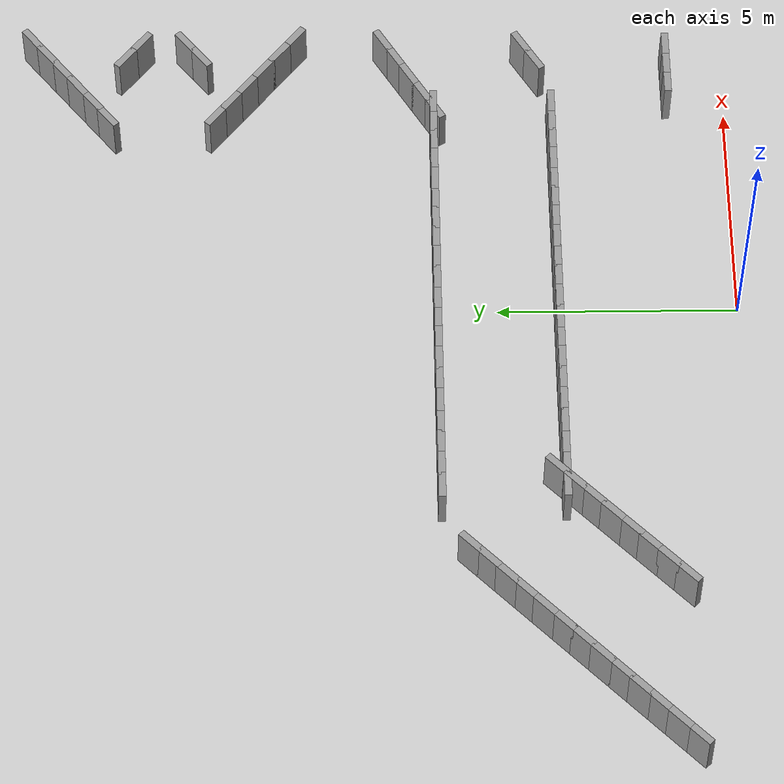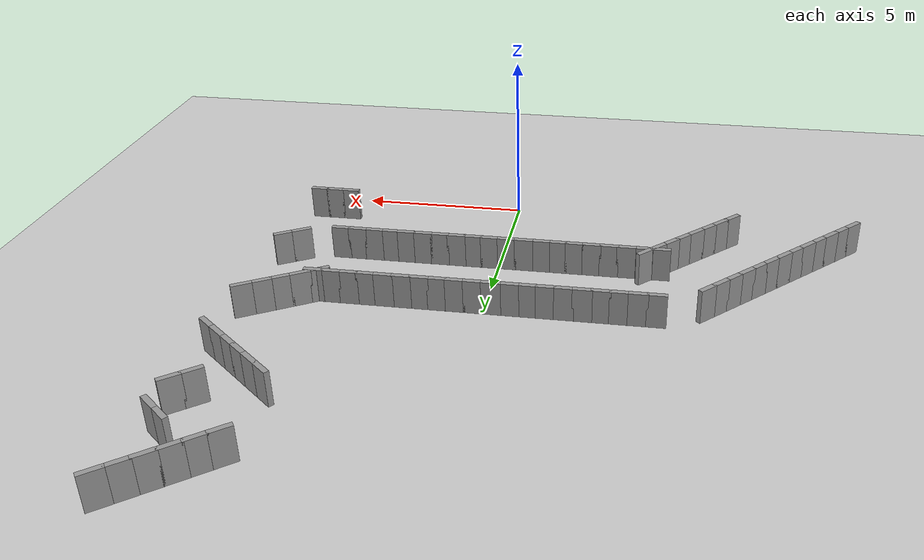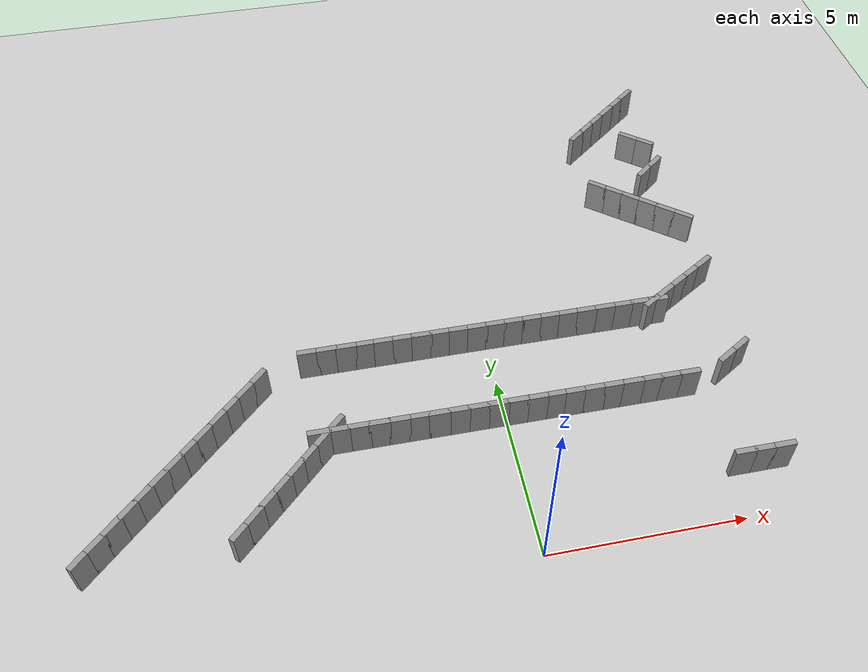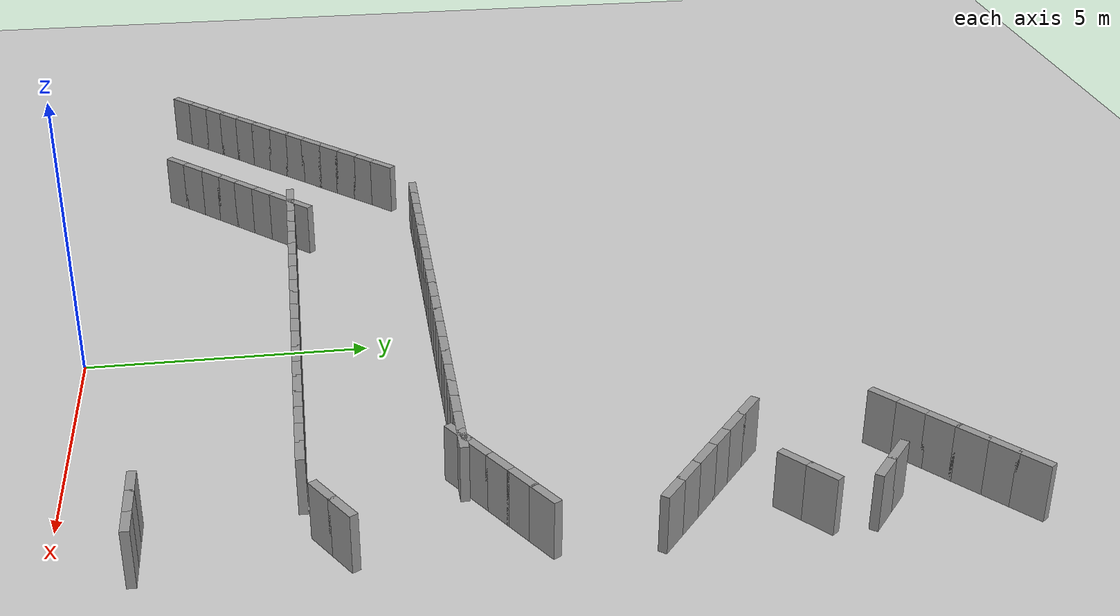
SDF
<sdf version="1.6">
 <world name="robot_harmonic_track">
  <include><uri>model://sun</uri></include>
  <include><uri>model://ground_plane</uri></include>
  <model name="wall_inner_10">
   <pose>5.25 1.25 0.5 0 0 0.0</pose>
   <static>1</static>
   <link name="link">
    <collision name="collision"><geometry><box><size>0.55 0.15 1.0</size></box></geometry></collision>
    <visual name="visual">
     <geometry><box><size>0.55 0.15 1.0</size></box></geometry>
     <material>
      <script><uri>file://media/materials/scripts/gazebo.material</uri><name>Gazebo/Grey</name></script>
     </material>
    </visual>
   </link>
  </model>
  <model name="wall_inner_11">
   <pose>5.75 1.25 0.5 0 0 0.0</pose>
   <static>1</static>
   <link name="link">
    <collision name="collision"><geometry><box><size>0.55 0.15 1.0</size></box></geometry></collision>
    <visual name="visual">
     <geometry><box><size>0.55 0.15 1.0</size></box></geometry>
     <material>
      <script><uri>file://media/materials/scripts/gazebo.material</uri><name>Gazebo/Grey</name></script>
     </material>
    </visual>
   </link>
  </model>
  <model name="wall_inner_12">
   <pose>6.25 1.25 0.5 0 0 0.0</pose>
   <static>1</static>
   <link name="link">
    <collision name="collision"><geometry><box><size>0.55 0.15 1.0</size></box></geometry></collision>
    <visual name="visual">
     <geometry><box><size>0.55 0.15 1.0</size></box></geometry>
     <material>
      <script><uri>file://media/materials/scripts/gazebo.material</uri><name>Gazebo/Grey</name></script>
     </material>
    </visual>
   </link>
  </model>
  <model name="wall_outer_122">
   <pose>6.510797857223635 14.809419345137119 0.5 0 0 -2.4668517113662403</pose>
   <static>1</static>
   <link name="link">
    <collision name="collision">
     <geometry><box><size>0.583593686452738 0.15 1.0</size></box></geometry>
    </collision>
    <visual name="visual">
     <geometry><box><size>0.583593686452738 0.15 1.0</size></box></geometry>
     <material>
      <script><uri>file://media/materials/scripts/gazebo.material</uri><name>Gazebo/Grey</name></script>
     </material>
    </visual>
   </link>
  </model>
  <model name="wall_outer_123">
   <pose>6.09413119055697 14.476086011803789 0.5 0 0 -2.4668517113662416</pose>
   <static>1</static>
   <link name="link">
    <collision name="collision">
     <geometry><box><size>0.5835936864527362 0.15 1.0</size></box></geometry>
    </collision>
    <visual name="visual">
     <geometry><box><size>0.5835936864527362 0.15 1.0</size></box></geometry>
     <material>
      <script><uri>file://media/materials/scripts/gazebo.material</uri><name>Gazebo/Grey</name></script>
     </material>
    </visual>
   </link>
  </model>
  <model name="wall_outer_124">
   <pose>5.677464523890303 14.142752678470455 0.5 0 0 -2.4668517113662403</pose>
   <static>1</static>
   <link name="link">
    <collision name="collision">
     <geometry><box><size>0.583593686452738 0.15 1.0</size></box></geometry>
    </collision>
    <visual name="visual">
     <geometry><box><size>0.583593686452738 0.15 1.0</size></box></geometry>
     <material>
      <script><uri>file://media/materials/scripts/gazebo.material</uri><name>Gazebo/Grey</name></script>
     </material>
    </visual>
   </link>
  </model>
  <model name="wall_outer_125">
   <pose>5.260797857223635 13.809419345137119 0.5 0 0 -2.4668517113662403</pose>
   <static>1</static>
   <link name="link">
    <collision name="collision">
     <geometry><box><size>0.583593686452738 0.15 1.0</size></box></geometry>
    </collision>
    <visual name="visual">
     <geometry><box><size>0.583593686452738 0.15 1.0</size></box></geometry>
     <material>
      <script><uri>file://media/materials/scripts/gazebo.material</uri><name>Gazebo/Grey</name></script>
     </material>
    </visual>
   </link>
  </model>
  <model name="wall_inner_126">
   <pose>6.40586880944303 11.523913988196211 0.5 0 0 -2.4668517113662416</pose>
   <static>1</static>
   <link name="link">
    <collision name="collision">
     <geometry><box><size>0.5835936864527362 0.15 1.0</size></box></geometry>
    </collision>
    <visual name="visual">
     <geometry><box><size>0.5835936864527362 0.15 1.0</size></box></geometry>
     <material>
      <script><uri>file://media/materials/scripts/gazebo.material</uri><name>Gazebo/Grey</name></script>
     </material>
    </visual>
   </link>
  </model>
  <model name="wall_outer_126">
   <pose>4.84413119055697 13.476086011803789 0.5 0 0 -2.4668517113662416</pose>
   <static>1</static>
   <link name="link">
    <collision name="collision">
     <geometry><box><size>0.5835936864527362 0.15 1.0</size></box></geometry>
    </collision>
    <visual name="visual">
     <geometry><box><size>0.5835936864527362 0.15 1.0</size></box></geometry>
     <material>
      <script><uri>file://media/materials/scripts/gazebo.material</uri><name>Gazebo/Grey</name></script>
     </material>
    </visual>
   </link>
  </model>
  <model name="wall_inner_127">
   <pose>5.989202142776365 11.190580654862881 0.5 0 0 -2.4668517113662403</pose>
   <static>1</static>
   <link name="link">
    <collision name="collision">
     <geometry><box><size>0.583593686452738 0.15 1.0</size></box></geometry>
    </collision>
    <visual name="visual">
     <geometry><box><size>0.583593686452738 0.15 1.0</size></box></geometry>
     <material>
      <script><uri>file://media/materials/scripts/gazebo.material</uri><name>Gazebo/Grey</name></script>
     </material>
    </visual>
   </link>
  </model>
  <model name="wall_outer_127">
   <pose>4.427464523890303 13.142752678470455 0.5 0 0 -2.4668517113662403</pose>
   <static>1</static>
   <link name="link">
    <collision name="collision">
     <geometry><box><size>0.583593686452738 0.15 1.0</size></box></geometry>
    </collision>
    <visual name="visual">
     <geometry><box><size>0.583593686452738 0.15 1.0</size></box></geometry>
     <material>
      <script><uri>file://media/materials/scripts/gazebo.material</uri><name>Gazebo/Grey</name></script>
     </material>
    </visual>
   </link>
  </model>
  <model name="wall_inner_128">
   <pose>5.989202142776365 12.809419345137119 0.5 0 0 -0.6747409422235532</pose>
   <static>1</static>
   <link name="link">
    <collision name="collision">
     <geometry><box><size>0.583593686452738 0.15 1.0</size></box></geometry>
    </collision>
    <visual name="visual">
     <geometry><box><size>0.583593686452738 0.15 1.0</size></box></geometry>
     <material>
      <script><uri>file://media/materials/scripts/gazebo.material</uri><name>Gazebo/Grey</name></script>
     </material>
    </visual>
   </link>
  </model>
  <model name="wall_outer_128">
   <pose>4.427464523890303 10.857247321529545 0.5 0 0 -0.6747409422235532</pose>
   <static>1</static>
   <link name="link">
    <collision name="collision">
     <geometry><box><size>0.583593686452738 0.15 1.0</size></box></geometry>
    </collision>
    <visual name="visual">
     <geometry><box><size>0.583593686452738 0.15 1.0</size></box></geometry>
     <material>
      <script><uri>file://media/materials/scripts/gazebo.material</uri><name>Gazebo/Grey</name></script>
     </material>
    </visual>
   </link>
  </model>
  <model name="wall_inner_129">
   <pose>6.40586880944303 12.476086011803789 0.5 0 0 -0.6747409422235516</pose>
   <static>1</static>
   <link name="link">
    <collision name="collision">
     <geometry><box><size>0.5835936864527362 0.15 1.0</size></box></geometry>
    </collision>
    <visual name="visual">
     <geometry><box><size>0.5835936864527362 0.15 1.0</size></box></geometry>
     <material>
      <script><uri>file://media/materials/scripts/gazebo.material</uri><name>Gazebo/Grey</name></script>
     </material>
    </visual>
   </link>
  </model>
  <model name="wall_outer_129">
   <pose>4.84413119055697 10.523913988196211 0.5 0 0 -0.6747409422235516</pose>
   <static>1</static>
   <link name="link">
    <collision name="collision">
     <geometry><box><size>0.5835936864527362 0.15 1.0</size></box></geometry>
    </collision>
    <visual name="visual">
     <geometry><box><size>0.5835936864527362 0.15 1.0</size></box></geometry>
     <material>
      <script><uri>file://media/materials/scripts/gazebo.material</uri><name>Gazebo/Grey</name></script>
     </material>
    </visual>
   </link>
  </model>
  <model name="wall_outer_130">
   <pose>5.260797857223635 10.190580654862881 0.5 0 0 -0.6747409422235532</pose>
   <static>1</static>
   <link name="link">
    <collision name="collision">
     <geometry><box><size>0.583593686452738 0.15 1.0</size></box></geometry>
    </collision>
    <visual name="visual">
     <geometry><box><size>0.583593686452738 0.15 1.0</size></box></geometry>
     <material>
      <script><uri>file://media/materials/scripts/gazebo.material</uri><name>Gazebo/Grey</name></script>
     </material>
    </visual>
   </link>
  </model>
  <model name="wall_outer_131">
   <pose>5.677464523890301 9.857247321529545 0.5 0 0 -0.6747409422235542</pose>
   <static>1</static>
   <link name="link">
    <collision name="collision">
     <geometry><box><size>0.5835936864527373 0.15 1.0</size></box></geometry>
    </collision>
    <visual name="visual">
     <geometry><box><size>0.5835936864527373 0.15 1.0</size></box></geometry>
     <material>
      <script><uri>file://media/materials/scripts/gazebo.material</uri><name>Gazebo/Grey</name></script>
     </material>
    </visual>
   </link>
  </model>
  <model name="wall_outer_132">
   <pose>6.094131190556973 9.52391398819621 0.5 0 0 -0.6747409422235495</pose>
   <static>1</static>
   <link name="link">
    <collision name="collision">
     <geometry><box><size>0.5835936864527377 0.15 1.0</size></box></geometry>
    </collision>
    <visual name="visual">
     <geometry><box><size>0.5835936864527377 0.15 1.0</size></box></geometry>
     <material>
      <script><uri>file://media/materials/scripts/gazebo.material</uri><name>Gazebo/Grey</name></script>
     </material>
    </visual>
   </link>
  </model>
  <model name="wall_outer_133">
   <pose>6.510797857223635 9.190580654862881 0.5 0 0 -0.6747409422235542</pose>
   <static>1</static>
   <link name="link">
    <collision name="collision">
     <geometry><box><size>0.5835936864527373 0.15 1.0</size></box></geometry>
    </collision>
    <visual name="visual">
     <geometry><box><size>0.5835936864527373 0.15 1.0</size></box></geometry>
     <material>
      <script><uri>file://media/materials/scripts/gazebo.material</uri><name>Gazebo/Grey</name></script>
     </material>
    </visual>
   </link>
  </model>
  <model name="wall_outer_146">
   <pose>6.402334851170139 7.2991388844134075 0.5 0 0 -2.60117315331921</pose>
   <static>1</static>
   <link name="link">
    <collision name="collision">
     <geometry><box><size>0.5800865358950277 0.15 1.0</size></box></geometry>
    </collision>
    <visual name="visual">
     <geometry><box><size>0.5800865358950277 0.15 1.0</size></box></geometry>
     <material>
      <script><uri>file://media/materials/scripts/gazebo.material</uri><name>Gazebo/Grey</name></script>
     </material>
    </visual>
   </link>
  </model>
  <model name="wall_outer_147">
   <pose>5.9477893966246835 7.026411611686136 0.5 0 0 -2.60117315331921</pose>
   <static>1</static>
   <link name="link">
    <collision name="collision">
     <geometry><box><size>0.5800865358950277 0.15 1.0</size></box></geometry>
    </collision>
    <visual name="visual">
     <geometry><box><size>0.5800865358950277 0.15 1.0</size></box></geometry>
     <material>
      <script><uri>file://media/materials/scripts/gazebo.material</uri><name>Gazebo/Grey</name></script>
     </material>
    </visual>
   </link>
  </model>
  <model name="wall_outer_148">
   <pose>5.493243942079227 6.753684338958861 0.5 0 0 -2.6011731533192077</pose>
   <static>1</static>
   <link name="link">
    <collision name="collision">
     <geometry><box><size>0.5800865358950273 0.15 1.0</size></box></geometry>
    </collision>
    <visual name="visual">
     <geometry><box><size>0.5800865358950273 0.15 1.0</size></box></geometry>
     <material>
      <script><uri>file://media/materials/scripts/gazebo.material</uri><name>Gazebo/Grey</name></script>
     </material>
    </visual>
   </link>
  </model>
  <model name="wall_inner_149">
   <pose>6.324937876102588 4.337224751950228 0.5 0 0 -2.6011731533192104</pose>
   <static>1</static>
   <link name="link">
    <collision name="collision">
     <geometry><box><size>0.5800865358950265 0.15 1.0</size></box></geometry>
    </collision>
    <visual name="visual">
     <geometry><box><size>0.5800865358950265 0.15 1.0</size></box></geometry>
     <material>
      <script><uri>file://media/materials/scripts/gazebo.material</uri><name>Gazebo/Grey</name></script>
     </material>
    </visual>
   </link>
  </model>
  <model name="wall_outer_149">
   <pose>5.038698487533775 6.48095706623159 0.5 0 0 -2.6011731533192104</pose>
   <static>1</static>
   <link name="link">
    <collision name="collision">
     <geometry><box><size>0.5800865358950265 0.15 1.0</size></box></geometry>
    </collision>
    <visual name="visual">
     <geometry><box><size>0.5800865358950265 0.15 1.0</size></box></geometry>
     <material>
      <script><uri>file://media/materials/scripts/gazebo.material</uri><name>Gazebo/Grey</name></script>
     </material>
    </visual>
   </link>
  </model>
  <model name="wall_inner_150">
   <pose>5.870392421557137 4.064497479222957 0.5 0 0 -2.6011731533192086</pose>
   <static>1</static>
   <link name="link">
    <collision name="collision">
     <geometry><box><size>0.5800865358950281 0.15 1.0</size></box></geometry>
    </collision>
    <visual name="visual">
     <geometry><box><size>0.5800865358950281 0.15 1.0</size></box></geometry>
     <material>
      <script><uri>file://media/materials/scripts/gazebo.material</uri><name>Gazebo/Grey</name></script>
     </material>
    </visual>
   </link>
  </model>
  <model name="wall_outer_150">
   <pose>4.584153032988318 6.208229793504317 0.5 0 0 -2.6011731533192086</pose>
   <static>1</static>
   <link name="link">
    <collision name="collision">
     <geometry><box><size>0.5800865358950281 0.15 1.0</size></box></geometry>
    </collision>
    <visual name="visual">
     <geometry><box><size>0.5800865358950281 0.15 1.0</size></box></geometry>
     <material>
      <script><uri>file://media/materials/scripts/gazebo.material</uri><name>Gazebo/Grey</name></script>
     </material>
    </visual>
   </link>
  </model>
  <model name="wall_inner_151">
   <pose>4.75 3.75 0.5 0 0 3.141592653589793</pose>
   <static>1</static>
   <link name="link">
    <collision name="collision"><geometry><box><size>0.55 0.15 1.0</size></box></geometry></collision>
    <visual name="visual">
     <geometry><box><size>0.55 0.15 1.0</size></box></geometry>
     <material>
      <script><uri>file://media/materials/scripts/gazebo.material</uri><name>Gazebo/Grey</name></script>
     </material>
    </visual>
   </link>
  </model>
  <model name="wall_outer_151">
   <pose>4.75 6.25 0.5 0 0 3.141592653589793</pose>
   <static>1</static>
   <link name="link">
    <collision name="collision"><geometry><box><size>0.55 0.15 1.0</size></box></geometry></collision>
    <visual name="visual">
     <geometry><box><size>0.55 0.15 1.0</size></box></geometry>
     <material>
      <script><uri>file://media/materials/scripts/gazebo.material</uri><name>Gazebo/Grey</name></script>
     </material>
    </visual>
   </link>
  </model>
  <model name="wall_inner_152">
   <pose>4.25 3.75 0.5 0 0 3.141592653589793</pose>
   <static>1</static>
   <link name="link">
    <collision name="collision"><geometry><box><size>0.55 0.15 1.0</size></box></geometry></collision>
    <visual name="visual">
     <geometry><box><size>0.55 0.15 1.0</size></box></geometry>
     <material>
      <script><uri>file://media/materials/scripts/gazebo.material</uri><name>Gazebo/Grey</name></script>
     </material>
    </visual>
   </link>
  </model>
  <model name="wall_outer_152">
   <pose>4.25 6.25 0.5 0 0 3.141592653589793</pose>
   <static>1</static>
   <link name="link">
    <collision name="collision"><geometry><box><size>0.55 0.15 1.0</size></box></geometry></collision>
    <visual name="visual">
     <geometry><box><size>0.55 0.15 1.0</size></box></geometry>
     <material>
      <script><uri>file://media/materials/scripts/gazebo.material</uri><name>Gazebo/Grey</name></script>
     </material>
    </visual>
   </link>
  </model>
  <model name="wall_inner_153">
   <pose>3.75 3.75 0.5 0 0 3.141592653589793</pose>
   <static>1</static>
   <link name="link">
    <collision name="collision"><geometry><box><size>0.55 0.15 1.0</size></box></geometry></collision>
    <visual name="visual">
     <geometry><box><size>0.55 0.15 1.0</size></box></geometry>
     <material>
      <script><uri>file://media/materials/scripts/gazebo.material</uri><name>Gazebo/Grey</name></script>
     </material>
    </visual>
   </link>
  </model>
  <model name="wall_outer_153">
   <pose>3.75 6.25 0.5 0 0 3.141592653589793</pose>
   <static>1</static>
   <link name="link">
    <collision name="collision"><geometry><box><size>0.55 0.15 1.0</size></box></geometry></collision>
    <visual name="visual">
     <geometry><box><size>0.55 0.15 1.0</size></box></geometry>
     <material>
      <script><uri>file://media/materials/scripts/gazebo.material</uri><name>Gazebo/Grey</name></script>
     </material>
    </visual>
   </link>
  </model>
  <model name="wall_inner_154">
   <pose>3.25 3.75 0.5 0 0 3.141592653589793</pose>
   <static>1</static>
   <link name="link">
    <collision name="collision"><geometry><box><size>0.55 0.15 1.0</size></box></geometry></collision>
    <visual name="visual">
     <geometry><box><size>0.55 0.15 1.0</size></box></geometry>
     <material>
      <script><uri>file://media/materials/scripts/gazebo.material</uri><name>Gazebo/Grey</name></script>
     </material>
    </visual>
   </link>
  </model>
  <model name="wall_outer_154">
   <pose>3.25 6.25 0.5 0 0 3.141592653589793</pose>
   <static>1</static>
   <link name="link">
    <collision name="collision"><geometry><box><size>0.55 0.15 1.0</size></box></geometry></collision>
    <visual name="visual">
     <geometry><box><size>0.55 0.15 1.0</size></box></geometry>
     <material>
      <script><uri>file://media/materials/scripts/gazebo.material</uri><name>Gazebo/Grey</name></script>
     </material>
    </visual>
   </link>
  </model>
  <model name="wall_inner_155">
   <pose>2.75 3.75 0.5 0 0 3.141592653589793</pose>
   <static>1</static>
   <link name="link">
    <collision name="collision"><geometry><box><size>0.55 0.15 1.0</size></box></geometry></collision>
    <visual name="visual">
     <geometry><box><size>0.55 0.15 1.0</size></box></geometry>
     <material>
      <script><uri>file://media/materials/scripts/gazebo.material</uri><name>Gazebo/Grey</name></script>
     </material>
    </visual>
   </link>
  </model>
  <model name="wall_outer_155">
   <pose>2.75 6.25 0.5 0 0 3.141592653589793</pose>
   <static>1</static>
   <link name="link">
    <collision name="collision"><geometry><box><size>0.55 0.15 1.0</size></box></geometry></collision>
    <visual name="visual">
     <geometry><box><size>0.55 0.15 1.0</size></box></geometry>
     <material>
      <script><uri>file://media/materials/scripts/gazebo.material</uri><name>Gazebo/Grey</name></script>
     </material>
    </visual>
   </link>
  </model>
  <model name="wall_inner_156">
   <pose>2.25 3.75 0.5 0 0 3.141592653589793</pose>
   <static>1</static>
   <link name="link">
    <collision name="collision"><geometry><box><size>0.55 0.15 1.0</size></box></geometry></collision>
    <visual name="visual">
     <geometry><box><size>0.55 0.15 1.0</size></box></geometry>
     <material>
      <script><uri>file://media/materials/scripts/gazebo.material</uri><name>Gazebo/Grey</name></script>
     </material>
    </visual>
   </link>
  </model>
  <model name="wall_outer_156">
   <pose>2.25 6.25 0.5 0 0 3.141592653589793</pose>
   <static>1</static>
   <link name="link">
    <collision name="collision"><geometry><box><size>0.55 0.15 1.0</size></box></geometry></collision>
    <visual name="visual">
     <geometry><box><size>0.55 0.15 1.0</size></box></geometry>
     <material>
      <script><uri>file://media/materials/scripts/gazebo.material</uri><name>Gazebo/Grey</name></script>
     </material>
    </visual>
   </link>
  </model>
  <model name="wall_inner_157">
   <pose>1.7499999999999998 3.75 0.5 0 0 3.141592653589793</pose>
   <static>1</static>
   <link name="link">
    <collision name="collision"><geometry><box><size>0.55 0.15 1.0</size></box></geometry></collision>
    <visual name="visual">
     <geometry><box><size>0.55 0.15 1.0</size></box></geometry>
     <material>
      <script><uri>file://media/materials/scripts/gazebo.material</uri><name>Gazebo/Grey</name></script>
     </material>
    </visual>
   </link>
  </model>
  <model name="wall_outer_157">
   <pose>1.7500000000000002 6.25 0.5 0 0 3.141592653589793</pose>
   <static>1</static>
   <link name="link">
    <collision name="collision"><geometry><box><size>0.55 0.15 1.0</size></box></geometry></collision>
    <visual name="visual">
     <geometry><box><size>0.55 0.15 1.0</size></box></geometry>
     <material>
      <script><uri>file://media/materials/scripts/gazebo.material</uri><name>Gazebo/Grey</name></script>
     </material>
    </visual>
   </link>
  </model>
  <model name="wall_inner_158">
   <pose>1.2499999999999998 3.75 0.5 0 0 3.141592653589793</pose>
   <static>1</static>
   <link name="link">
    <collision name="collision"><geometry><box><size>0.55 0.15 1.0</size></box></geometry></collision>
    <visual name="visual">
     <geometry><box><size>0.55 0.15 1.0</size></box></geometry>
     <material>
      <script><uri>file://media/materials/scripts/gazebo.material</uri><name>Gazebo/Grey</name></script>
     </material>
    </visual>
   </link>
  </model>
  <model name="wall_outer_158">
   <pose>1.2500000000000002 6.25 0.5 0 0 3.141592653589793</pose>
   <static>1</static>
   <link name="link">
    <collision name="collision"><geometry><box><size>0.55 0.15 1.0</size></box></geometry></collision>
    <visual name="visual">
     <geometry><box><size>0.55 0.15 1.0</size></box></geometry>
     <material>
      <script><uri>file://media/materials/scripts/gazebo.material</uri><name>Gazebo/Grey</name></script>
     </material>
    </visual>
   </link>
  </model>
  <model name="wall_inner_159">
   <pose>0.7499999999999999 3.75 0.5 0 0 3.141592653589793</pose>
   <static>1</static>
   <link name="link">
    <collision name="collision"><geometry><box><size>0.55 0.15 1.0</size></box></geometry></collision>
    <visual name="visual">
     <geometry><box><size>0.55 0.15 1.0</size></box></geometry>
     <material>
      <script><uri>file://media/materials/scripts/gazebo.material</uri><name>Gazebo/Grey</name></script>
     </material>
    </visual>
   </link>
  </model>
  <model name="wall_outer_159">
   <pose>0.7500000000000001 6.25 0.5 0 0 3.141592653589793</pose>
   <static>1</static>
   <link name="link">
    <collision name="collision"><geometry><box><size>0.55 0.15 1.0</size></box></geometry></collision>
    <visual name="visual">
     <geometry><box><size>0.55 0.15 1.0</size></box></geometry>
     <material>
      <script><uri>file://media/materials/scripts/gazebo.material</uri><name>Gazebo/Grey</name></script>
     </material>
    </visual>
   </link>
  </model>
  <model name="wall_inner_160">
   <pose>0.24999999999999983 3.75 0.5 0 0 3.141592653589793</pose>
   <static>1</static>
   <link name="link">
    <collision name="collision"><geometry><box><size>0.55 0.15 1.0</size></box></geometry></collision>
    <visual name="visual">
     <geometry><box><size>0.55 0.15 1.0</size></box></geometry>
     <material>
      <script><uri>file://media/materials/scripts/gazebo.material</uri><name>Gazebo/Grey</name></script>
     </material>
    </visual>
   </link>
  </model>
  <model name="wall_outer_160">
   <pose>0.25000000000000017 6.25 0.5 0 0 3.141592653589793</pose>
   <static>1</static>
   <link name="link">
    <collision name="collision"><geometry><box><size>0.55 0.15 1.0</size></box></geometry></collision>
    <visual name="visual">
     <geometry><box><size>0.55 0.15 1.0</size></box></geometry>
     <material>
      <script><uri>file://media/materials/scripts/gazebo.material</uri><name>Gazebo/Grey</name></script>
     </material>
    </visual>
   </link>
  </model>
  <model name="wall_inner_161">
   <pose>-0.25000000000000017 3.75 0.5 0 0 3.141592653589793</pose>
   <static>1</static>
   <link name="link">
    <collision name="collision"><geometry><box><size>0.55 0.15 1.0</size></box></geometry></collision>
    <visual name="visual">
     <geometry><box><size>0.55 0.15 1.0</size></box></geometry>
     <material>
      <script><uri>file://media/materials/scripts/gazebo.material</uri><name>Gazebo/Grey</name></script>
     </material>
    </visual>
   </link>
  </model>
  <model name="wall_outer_161">
   <pose>-0.24999999999999983 6.25 0.5 0 0 3.141592653589793</pose>
   <static>1</static>
   <link name="link">
    <collision name="collision"><geometry><box><size>0.55 0.15 1.0</size></box></geometry></collision>
    <visual name="visual">
     <geometry><box><size>0.55 0.15 1.0</size></box></geometry>
     <material>
      <script><uri>file://media/materials/scripts/gazebo.material</uri><name>Gazebo/Grey</name></script>
     </material>
    </visual>
   </link>
  </model>
  <model name="wall_inner_162">
   <pose>-0.7500000000000001 3.75 0.5 0 0 3.141592653589793</pose>
   <static>1</static>
   <link name="link">
    <collision name="collision"><geometry><box><size>0.55 0.15 1.0</size></box></geometry></collision>
    <visual name="visual">
     <geometry><box><size>0.55 0.15 1.0</size></box></geometry>
     <material>
      <script><uri>file://media/materials/scripts/gazebo.material</uri><name>Gazebo/Grey</name></script>
     </material>
    </visual>
   </link>
  </model>
  <model name="wall_outer_162">
   <pose>-0.7499999999999999 6.25 0.5 0 0 3.141592653589793</pose>
   <static>1</static>
   <link name="link">
    <collision name="collision"><geometry><box><size>0.55 0.15 1.0</size></box></geometry></collision>
    <visual name="visual">
     <geometry><box><size>0.55 0.15 1.0</size></box></geometry>
     <material>
      <script><uri>file://media/materials/scripts/gazebo.material</uri><name>Gazebo/Grey</name></script>
     </material>
    </visual>
   </link>
  </model>
  <model name="wall_inner_163">
   <pose>-1.2500000000000002 3.75 0.5 0 0 3.141592653589793</pose>
   <static>1</static>
   <link name="link">
    <collision name="collision"><geometry><box><size>0.55 0.15 1.0</size></box></geometry></collision>
    <visual name="visual">
     <geometry><box><size>0.55 0.15 1.0</size></box></geometry>
     <material>
      <script><uri>file://media/materials/scripts/gazebo.material</uri><name>Gazebo/Grey</name></script>
     </material>
    </visual>
   </link>
  </model>
  <model name="wall_outer_163">
   <pose>-1.2499999999999998 6.25 0.5 0 0 3.141592653589793</pose>
   <static>1</static>
   <link name="link">
    <collision name="collision"><geometry><box><size>0.55 0.15 1.0</size></box></geometry></collision>
    <visual name="visual">
     <geometry><box><size>0.55 0.15 1.0</size></box></geometry>
     <material>
      <script><uri>file://media/materials/scripts/gazebo.material</uri><name>Gazebo/Grey</name></script>
     </material>
    </visual>
   </link>
  </model>
  <model name="wall_inner_164">
   <pose>-1.7500000000000002 3.75 0.5 0 0 3.141592653589793</pose>
   <static>1</static>
   <link name="link">
    <collision name="collision"><geometry><box><size>0.55 0.15 1.0</size></box></geometry></collision>
    <visual name="visual">
     <geometry><box><size>0.55 0.15 1.0</size></box></geometry>
     <material>
      <script><uri>file://media/materials/scripts/gazebo.material</uri><name>Gazebo/Grey</name></script>
     </material>
    </visual>
   </link>
  </model>
  <model name="wall_outer_164">
   <pose>-1.7499999999999998 6.25 0.5 0 0 3.141592653589793</pose>
   <static>1</static>
   <link name="link">
    <collision name="collision"><geometry><box><size>0.55 0.15 1.0</size></box></geometry></collision>
    <visual name="visual">
     <geometry><box><size>0.55 0.15 1.0</size></box></geometry>
     <material>
      <script><uri>file://media/materials/scripts/gazebo.material</uri><name>Gazebo/Grey</name></script>
     </material>
    </visual>
   </link>
  </model>
  <model name="wall_inner_165">
   <pose>-2.25 3.75 0.5 0 0 3.141592653589793</pose>
   <static>1</static>
   <link name="link">
    <collision name="collision"><geometry><box><size>0.55 0.15 1.0</size></box></geometry></collision>
    <visual name="visual">
     <geometry><box><size>0.55 0.15 1.0</size></box></geometry>
     <material>
      <script><uri>file://media/materials/scripts/gazebo.material</uri><name>Gazebo/Grey</name></script>
     </material>
    </visual>
   </link>
  </model>
  <model name="wall_outer_165">
   <pose>-2.25 6.25 0.5 0 0 3.141592653589793</pose>
   <static>1</static>
   <link name="link">
    <collision name="collision"><geometry><box><size>0.55 0.15 1.0</size></box></geometry></collision>
    <visual name="visual">
     <geometry><box><size>0.55 0.15 1.0</size></box></geometry>
     <material>
      <script><uri>file://media/materials/scripts/gazebo.material</uri><name>Gazebo/Grey</name></script>
     </material>
    </visual>
   </link>
  </model>
  <model name="wall_inner_166">
   <pose>-2.75 3.75 0.5 0 0 3.141592653589793</pose>
   <static>1</static>
   <link name="link">
    <collision name="collision"><geometry><box><size>0.55 0.15 1.0</size></box></geometry></collision>
    <visual name="visual">
     <geometry><box><size>0.55 0.15 1.0</size></box></geometry>
     <material>
      <script><uri>file://media/materials/scripts/gazebo.material</uri><name>Gazebo/Grey</name></script>
     </material>
    </visual>
   </link>
  </model>
  <model name="wall_outer_166">
   <pose>-2.75 6.25 0.5 0 0 3.141592653589793</pose>
   <static>1</static>
   <link name="link">
    <collision name="collision"><geometry><box><size>0.55 0.15 1.0</size></box></geometry></collision>
    <visual name="visual">
     <geometry><box><size>0.55 0.15 1.0</size></box></geometry>
     <material>
      <script><uri>file://media/materials/scripts/gazebo.material</uri><name>Gazebo/Grey</name></script>
     </material>
    </visual>
   </link>
  </model>
  <model name="wall_inner_167">
   <pose>-3.25 3.75 0.5 0 0 3.141592653589793</pose>
   <static>1</static>
   <link name="link">
    <collision name="collision"><geometry><box><size>0.55 0.15 1.0</size></box></geometry></collision>
    <visual name="visual">
     <geometry><box><size>0.55 0.15 1.0</size></box></geometry>
     <material>
      <script><uri>file://media/materials/scripts/gazebo.material</uri><name>Gazebo/Grey</name></script>
     </material>
    </visual>
   </link>
  </model>
  <model name="wall_outer_167">
   <pose>-3.25 6.25 0.5 0 0 3.141592653589793</pose>
   <static>1</static>
   <link name="link">
    <collision name="collision"><geometry><box><size>0.55 0.15 1.0</size></box></geometry></collision>
    <visual name="visual">
     <geometry><box><size>0.55 0.15 1.0</size></box></geometry>
     <material>
      <script><uri>file://media/materials/scripts/gazebo.material</uri><name>Gazebo/Grey</name></script>
     </material>
    </visual>
   </link>
  </model>
  <model name="wall_inner_168">
   <pose>-3.75 3.75 0.5 0 0 3.141592653589793</pose>
   <static>1</static>
   <link name="link">
    <collision name="collision"><geometry><box><size>0.55 0.15 1.0</size></box></geometry></collision>
    <visual name="visual">
     <geometry><box><size>0.55 0.15 1.0</size></box></geometry>
     <material>
      <script><uri>file://media/materials/scripts/gazebo.material</uri><name>Gazebo/Grey</name></script>
     </material>
    </visual>
   </link>
  </model>
  <model name="wall_outer_168">
   <pose>-3.75 6.25 0.5 0 0 3.141592653589793</pose>
   <static>1</static>
   <link name="link">
    <collision name="collision"><geometry><box><size>0.55 0.15 1.0</size></box></geometry></collision>
    <visual name="visual">
     <geometry><box><size>0.55 0.15 1.0</size></box></geometry>
     <material>
      <script><uri>file://media/materials/scripts/gazebo.material</uri><name>Gazebo/Grey</name></script>
     </material>
    </visual>
   </link>
  </model>
  <model name="wall_inner_169">
   <pose>-4.25 3.75 0.5 0 0 3.141592653589793</pose>
   <static>1</static>
   <link name="link">
    <collision name="collision"><geometry><box><size>0.55 0.15 1.0</size></box></geometry></collision>
    <visual name="visual">
     <geometry><box><size>0.55 0.15 1.0</size></box></geometry>
     <material>
      <script><uri>file://media/materials/scripts/gazebo.material</uri><name>Gazebo/Grey</name></script>
     </material>
    </visual>
   </link>
  </model>
  <model name="wall_outer_169">
   <pose>-4.25 6.25 0.5 0 0 3.141592653589793</pose>
   <static>1</static>
   <link name="link">
    <collision name="collision"><geometry><box><size>0.55 0.15 1.0</size></box></geometry></collision>
    <visual name="visual">
     <geometry><box><size>0.55 0.15 1.0</size></box></geometry>
     <material>
      <script><uri>file://media/materials/scripts/gazebo.material</uri><name>Gazebo/Grey</name></script>
     </material>
    </visual>
   </link>
  </model>
  <model name="wall_inner_170">
   <pose>-4.75 3.75 0.5 0 0 3.141592653589793</pose>
   <static>1</static>
   <link name="link">
    <collision name="collision"><geometry><box><size>0.55 0.15 1.0</size></box></geometry></collision>
    <visual name="visual">
     <geometry><box><size>0.55 0.15 1.0</size></box></geometry>
     <material>
      <script><uri>file://media/materials/scripts/gazebo.material</uri><name>Gazebo/Grey</name></script>
     </material>
    </visual>
   </link>
  </model>
  <model name="wall_outer_170">
   <pose>-4.75 6.25 0.5 0 0 3.141592653589793</pose>
   <static>1</static>
   <link name="link">
    <collision name="collision"><geometry><box><size>0.55 0.15 1.0</size></box></geometry></collision>
    <visual name="visual">
     <geometry><box><size>0.55 0.15 1.0</size></box></geometry>
     <material>
      <script><uri>file://media/materials/scripts/gazebo.material</uri><name>Gazebo/Grey</name></script>
     </material>
    </visual>
   </link>
  </model>
  <model name="wall_inner_171">
   <pose>-4.294687952088244 3.9375450949453867 0.5 0 0 -2.356194490192345</pose>
   <static>1</static>
   <link name="link">
    <collision name="collision">
     <geometry><box><size>0.5550762722761049 0.15 1.0</size></box></geometry>
    </collision>
    <visual name="visual">
     <geometry><box><size>0.5550762722761049 0.15 1.0</size></box></geometry>
     <material>
      <script><uri>file://media/materials/scripts/gazebo.material</uri><name>Gazebo/Grey</name></script>
     </material>
    </visual>
   </link>
  </model>
  <model name="wall_outer_171">
   <pose>-6.062454905054613 5.705312047911756 0.5 0 0 -2.356194490192345</pose>
   <static>1</static>
   <link name="link">
    <collision name="collision">
     <geometry><box><size>0.5550762722761049 0.15 1.0</size></box></geometry>
    </collision>
    <visual name="visual">
     <geometry><box><size>0.5550762722761049 0.15 1.0</size></box></geometry>
     <material>
      <script><uri>file://media/materials/scripts/gazebo.material</uri><name>Gazebo/Grey</name></script>
     </material>
    </visual>
   </link>
  </model>
  <model name="wall_inner_172">
   <pose>-4.651830809231101 3.58040223780253 0.5 0 0 -2.356194490192345</pose>
   <static>1</static>
   <link name="link">
    <collision name="collision">
     <geometry><box><size>0.5550762722761061 0.15 1.0</size></box></geometry>
    </collision>
    <visual name="visual">
     <geometry><box><size>0.5550762722761061 0.15 1.0</size></box></geometry>
     <material>
      <script><uri>file://media/materials/scripts/gazebo.material</uri><name>Gazebo/Grey</name></script>
     </material>
    </visual>
   </link>
  </model>
  <model name="wall_outer_172">
   <pose>-6.41959776219747 5.348169190768899 0.5 0 0 -2.356194490192345</pose>
   <static>1</static>
   <link name="link">
    <collision name="collision">
     <geometry><box><size>0.5550762722761061 0.15 1.0</size></box></geometry>
    </collision>
    <visual name="visual">
     <geometry><box><size>0.5550762722761061 0.15 1.0</size></box></geometry>
     <material>
      <script><uri>file://media/materials/scripts/gazebo.material</uri><name>Gazebo/Grey</name></script>
     </material>
    </visual>
   </link>
  </model>
  <model name="wall_inner_173">
   <pose>-5.008973666373958 3.223259380659673 0.5 0 0 -2.356194490192345</pose>
   <static>1</static>
   <link name="link">
    <collision name="collision">
     <geometry><box><size>0.5550762722761049 0.15 1.0</size></box></geometry>
    </collision>
    <visual name="visual">
     <geometry><box><size>0.5550762722761049 0.15 1.0</size></box></geometry>
     <material>
      <script><uri>file://media/materials/scripts/gazebo.material</uri><name>Gazebo/Grey</name></script>
     </material>
    </visual>
   </link>
  </model>
  <model name="wall_outer_173">
   <pose>-6.776740619340327 4.991026333626042 0.5 0 0 -2.356194490192345</pose>
   <static>1</static>
   <link name="link">
    <collision name="collision">
     <geometry><box><size>0.5550762722761049 0.15 1.0</size></box></geometry>
    </collision>
    <visual name="visual">
     <geometry><box><size>0.5550762722761049 0.15 1.0</size></box></geometry>
     <material>
      <script><uri>file://media/materials/scripts/gazebo.material</uri><name>Gazebo/Grey</name></script>
     </material>
    </visual>
   </link>
  </model>
  <model name="wall_inner_174">
   <pose>-5.3661165235168165 2.8661165235168147 0.5 0 0 -2.3561944901923457</pose>
   <static>1</static>
   <link name="link">
    <collision name="collision">
     <geometry><box><size>0.5550762722761058 0.15 1.0</size></box></geometry>
    </collision>
    <visual name="visual">
     <geometry><box><size>0.5550762722761058 0.15 1.0</size></box></geometry>
     <material>
      <script><uri>file://media/materials/scripts/gazebo.material</uri><name>Gazebo/Grey</name></script>
     </material>
    </visual>
   </link>
  </model>
  <model name="wall_outer_174">
   <pose>-7.1338834764831835 4.633883476483185 0.5 0 0 -2.3561944901923457</pose>
   <static>1</static>
   <link name="link">
    <collision name="collision">
     <geometry><box><size>0.5550762722761058 0.15 1.0</size></box></geometry>
    </collision>
    <visual name="visual">
     <geometry><box><size>0.5550762722761058 0.15 1.0</size></box></geometry>
     <material>
      <script><uri>file://media/materials/scripts/gazebo.material</uri><name>Gazebo/Grey</name></script>
     </material>
    </visual>
   </link>
  </model>
  <model name="wall_inner_175">
   <pose>-5.723259380659673 2.5089736663739592 0.5 0 0 -2.3561944901923444</pose>
   <static>1</static>
   <link name="link">
    <collision name="collision">
     <geometry><box><size>0.5550762722761052 0.15 1.0</size></box></geometry>
    </collision>
    <visual name="visual">
     <geometry><box><size>0.5550762722761052 0.15 1.0</size></box></geometry>
     <material>
      <script><uri>file://media/materials/scripts/gazebo.material</uri><name>Gazebo/Grey</name></script>
     </material>
    </visual>
   </link>
  </model>
  <model name="wall_outer_175">
   <pose>-7.491026333626042 4.276740619340327 0.5 0 0 -2.3561944901923444</pose>
   <static>1</static>
   <link name="link">
    <collision name="collision">
     <geometry><box><size>0.5550762722761052 0.15 1.0</size></box></geometry>
    </collision>
    <visual name="visual">
     <geometry><box><size>0.5550762722761052 0.15 1.0</size></box></geometry>
     <material>
      <script><uri>file://media/materials/scripts/gazebo.material</uri><name>Gazebo/Grey</name></script>
     </material>
    </visual>
   </link>
  </model>
  <model name="wall_inner_176">
   <pose>-6.080402237802529 2.1518308092311016 0.5 0 0 -2.3561944901923444</pose>
   <static>1</static>
   <link name="link">
    <collision name="collision">
     <geometry><box><size>0.5550762722761052 0.15 1.0</size></box></geometry>
    </collision>
    <visual name="visual">
     <geometry><box><size>0.5550762722761052 0.15 1.0</size></box></geometry>
     <material>
      <script><uri>file://media/materials/scripts/gazebo.material</uri><name>Gazebo/Grey</name></script>
     </material>
    </visual>
   </link>
  </model>
  <model name="wall_outer_176">
   <pose>-7.848169190768898 3.9195977621974696 0.5 0 0 -2.3561944901923444</pose>
   <static>1</static>
   <link name="link">
    <collision name="collision">
     <geometry><box><size>0.5550762722761052 0.15 1.0</size></box></geometry>
    </collision>
    <visual name="visual">
     <geometry><box><size>0.5550762722761052 0.15 1.0</size></box></geometry>
     <material>
      <script><uri>file://media/materials/scripts/gazebo.material</uri><name>Gazebo/Grey</name></script>
     </material>
    </visual>
   </link>
  </model>
  <model name="wall_inner_177">
   <pose>-6.437545094945388 1.7946879520882437 0.5 0 0 -2.3561944901923457</pose>
   <static>1</static>
   <link name="link">
    <collision name="collision">
     <geometry><box><size>0.5550762722761058 0.15 1.0</size></box></geometry>
    </collision>
    <visual name="visual">
     <geometry><box><size>0.5550762722761058 0.15 1.0</size></box></geometry>
     <material>
      <script><uri>file://media/materials/scripts/gazebo.material</uri><name>Gazebo/Grey</name></script>
     </material>
    </visual>
   </link>
  </model>
  <model name="wall_outer_177">
   <pose>-8.205312047911756 3.562454905054614 0.5 0 0 -2.3561944901923457</pose>
   <static>1</static>
   <link name="link">
    <collision name="collision">
     <geometry><box><size>0.5550762722761058 0.15 1.0</size></box></geometry>
    </collision>
    <visual name="visual">
     <geometry><box><size>0.5550762722761058 0.15 1.0</size></box></geometry>
     <material>
      <script><uri>file://media/materials/scripts/gazebo.material</uri><name>Gazebo/Grey</name></script>
     </material>
    </visual>
   </link>
  </model>
  <model name="wall_inner_178">
   <pose>-6.794687952088244 1.4375450949453872 0.5 0 0 -2.356194490192345</pose>
   <static>1</static>
   <link name="link">
    <collision name="collision">
     <geometry><box><size>0.5550762722761049 0.15 1.0</size></box></geometry>
    </collision>
    <visual name="visual">
     <geometry><box><size>0.5550762722761049 0.15 1.0</size></box></geometry>
     <material>
      <script><uri>file://media/materials/scripts/gazebo.material</uri><name>Gazebo/Grey</name></script>
     </material>
    </visual>
   </link>
  </model>
  <model name="wall_outer_178">
   <pose>-8.562454905054613 3.205312047911756 0.5 0 0 -2.356194490192345</pose>
   <static>1</static>
   <link name="link">
    <collision name="collision">
     <geometry><box><size>0.5550762722761049 0.15 1.0</size></box></geometry>
    </collision>
    <visual name="visual">
     <geometry><box><size>0.5550762722761049 0.15 1.0</size></box></geometry>
     <material>
      <script><uri>file://media/materials/scripts/gazebo.material</uri><name>Gazebo/Grey</name></script>
     </material>
    </visual>
   </link>
  </model>
  <model name="wall_outer_179">
   <pose>-8.91959776219747 2.8481691907688997 0.5 0 0 -2.356194490192346</pose>
   <static>1</static>
   <link name="link">
    <collision name="collision">
     <geometry><box><size>0.5550762722761068 0.15 1.0</size></box></geometry>
    </collision>
    <visual name="visual">
     <geometry><box><size>0.5550762722761068 0.15 1.0</size></box></geometry>
     <material>
      <script><uri>file://media/materials/scripts/gazebo.material</uri><name>Gazebo/Grey</name></script>
     </material>
    </visual>
   </link>
  </model>
  <model name="wall_outer_180">
   <pose>-9.276740619340329 2.49102633362604 0.5 0 0 -2.356194490192343</pose>
   <static>1</static>
   <link name="link">
    <collision name="collision">
     <geometry><box><size>0.5550762722761046 0.15 1.0</size></box></geometry>
    </collision>
    <visual name="visual">
     <geometry><box><size>0.5550762722761046 0.15 1.0</size></box></geometry>
     <material>
      <script><uri>file://media/materials/scripts/gazebo.material</uri><name>Gazebo/Grey</name></script>
     </material>
    </visual>
   </link>
  </model>
  <model name="wall_outer_181">
   <pose>-9.633883476483183 2.1338834764831853 0.5 0 0 -2.356194490192346</pose>
   <static>1</static>
   <link name="link">
    <collision name="collision">
     <geometry><box><size>0.5550762722761055 0.15 1.0</size></box></geometry>
    </collision>
    <visual name="visual">
     <geometry><box><size>0.5550762722761055 0.15 1.0</size></box></geometry>
     <material>
      <script><uri>file://media/materials/scripts/gazebo.material</uri><name>Gazebo/Grey</name></script>
     </material>
    </visual>
   </link>
  </model>
  <model name="wall_outer_182">
   <pose>-9.991026333626044 1.776740619340326 0.5 0 0 -2.356194490192343</pose>
   <static>1</static>
   <link name="link">
    <collision name="collision">
     <geometry><box><size>0.5550762722761046 0.15 1.0</size></box></geometry>
    </collision>
    <visual name="visual">
     <geometry><box><size>0.5550762722761046 0.15 1.0</size></box></geometry>
     <material>
      <script><uri>file://media/materials/scripts/gazebo.material</uri><name>Gazebo/Grey</name></script>
     </material>
    </visual>
   </link>
  </model>
  <model name="wall_outer_183">
   <pose>-10.348169190768898 1.41959776219747 0.5 0 0 -2.356194490192345</pose>
   <static>1</static>
   <link name="link">
    <collision name="collision">
     <geometry><box><size>0.5550762722761061 0.15 1.0</size></box></geometry>
    </collision>
    <visual name="visual">
     <geometry><box><size>0.5550762722761061 0.15 1.0</size></box></geometry>
     <material>
      <script><uri>file://media/materials/scripts/gazebo.material</uri><name>Gazebo/Grey</name></script>
     </material>
    </visual>
   </link>
  </model>
 </world>
</sdf>
